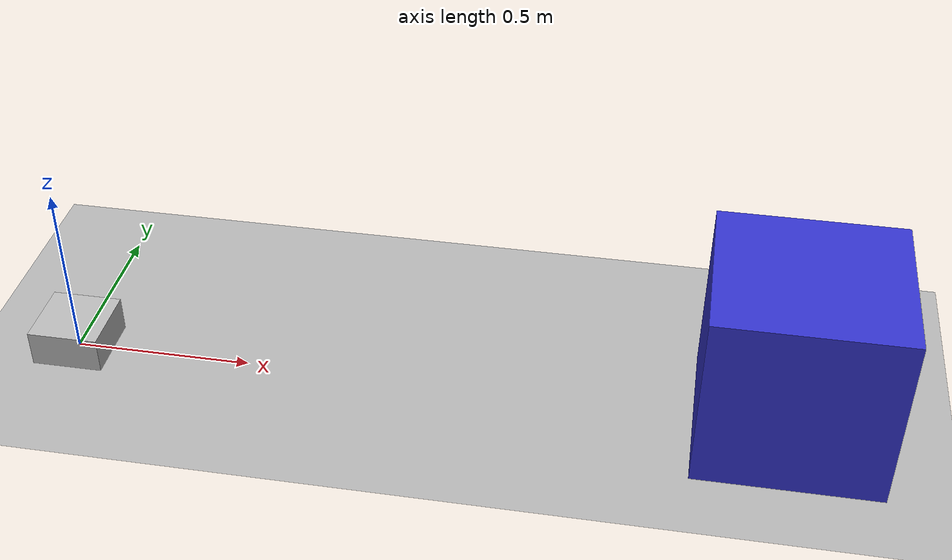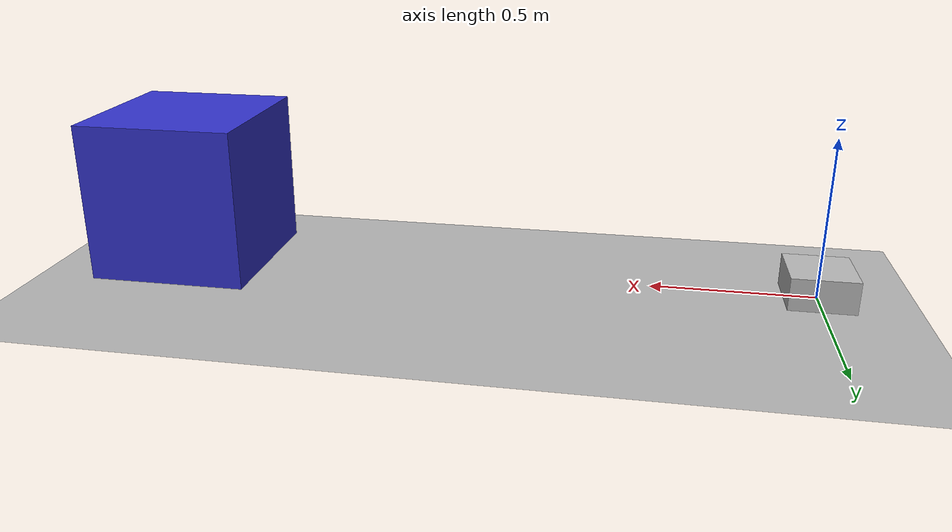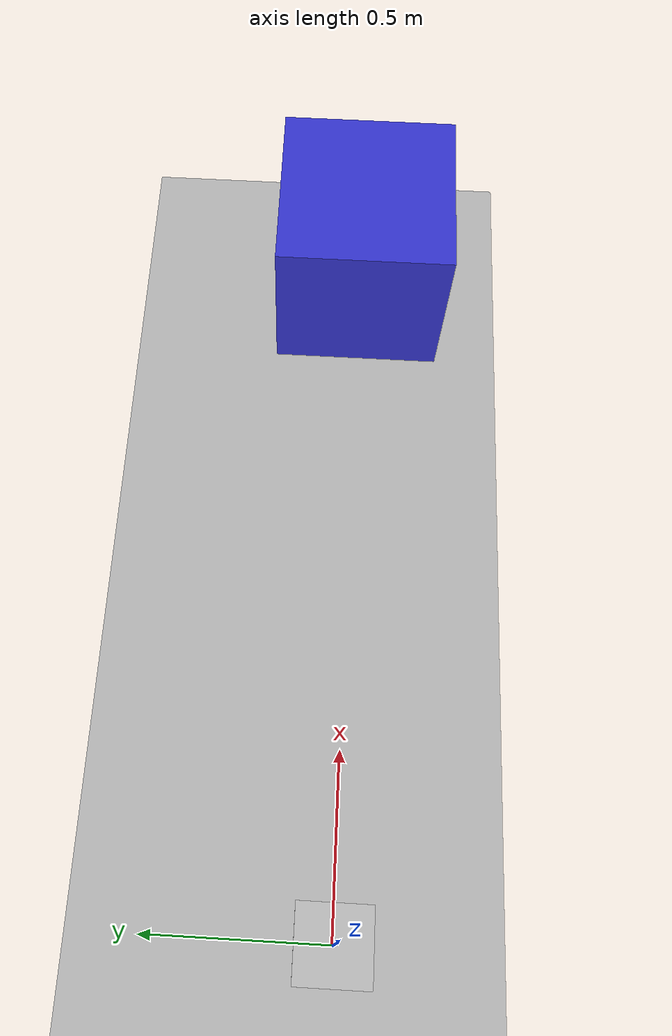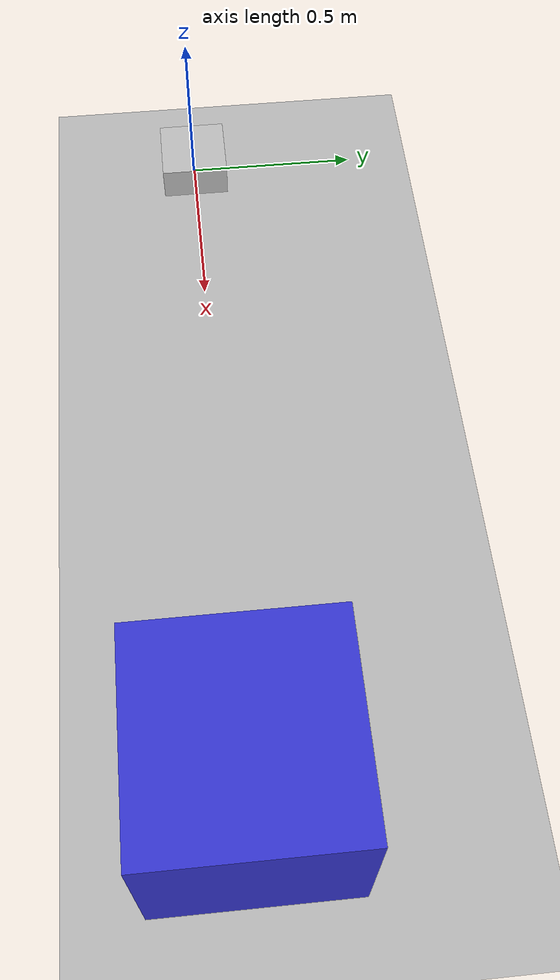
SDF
<sdf version="1.7">
  <world name="default">

    <!-- Physics -->
    <plugin filename="libignition-gazebo6-physics-system.so"
            name="ignition::gazebo::systems::Physics"/>

    <!-- Sensors -->
    <plugin filename="libignition-gazebo6-sensors-system.so"
            name="ignition::gazebo::systems::Sensors"/>

    <!-- Light (important) -->
    <light type="directional" name="sun">
      <cast_shadows>true</cast_shadows>
      <direction>-0.5 0.5 -1</direction>
    </light>

    <!-- Ground plane so the camera has a visible scene -->
    <model name="ground_plane">
      <static>true</static>
      <link name="link">
        <visual name="visual">
          <geometry>
            <plane>
              <normal>0 0 1</normal>
              <size>100 100</size>
            </plane>
          </geometry>
          <material>
            <ambient>0.7 0.7 0.7 1</ambient>
          </material>
        </visual>
      </link>
    </model>

    <model name="target_box">
      <static>true</static>
      <pose>2 0 0.25 0 0 0</pose>
      <link name="link">
        <visual name="visual">
          <geometry>
            <box>
              <size>0.5 0.5 0.5</size>
            </box>
          </geometry>
          <material>
            <ambient>0.2 0.2 0.8 1</ambient>
            <diffuse>0.2 0.2 0.8 1</diffuse>
          </material>
        </visual>
      </link>
    </model>

    <model name="camera_bot">
      <static>true</static>

      <link name="link">

        <visual name="visual">
          <geometry>
            <box>
              <size>0.2 0.2 0.2</size>
            </box>
          </geometry>
        </visual>

        <sensor name="camera" type="camera">
            <always_on>true</always_on>
            <update_rate>30</update_rate>

            <topic>/camera</topic>

            <camera>
                <image>
                <width>640</width>
                <height>480</height>
                <format>R8G8B8</format>
                </image>
            </camera>

            <!-- 🔥 CRITICAL -->
            <visualize>true</visualize>
        </sensor>
      </link>
    </model>

  </world>
</sdf>
